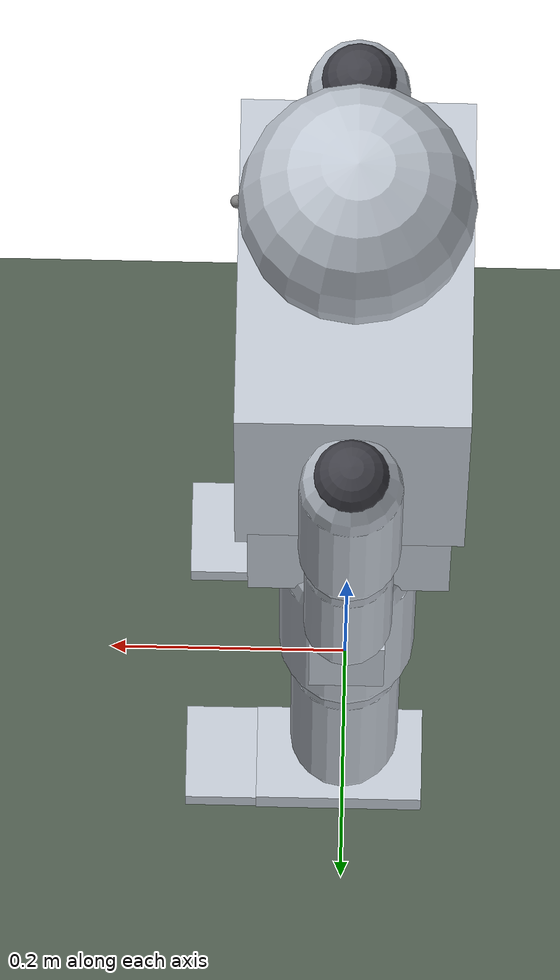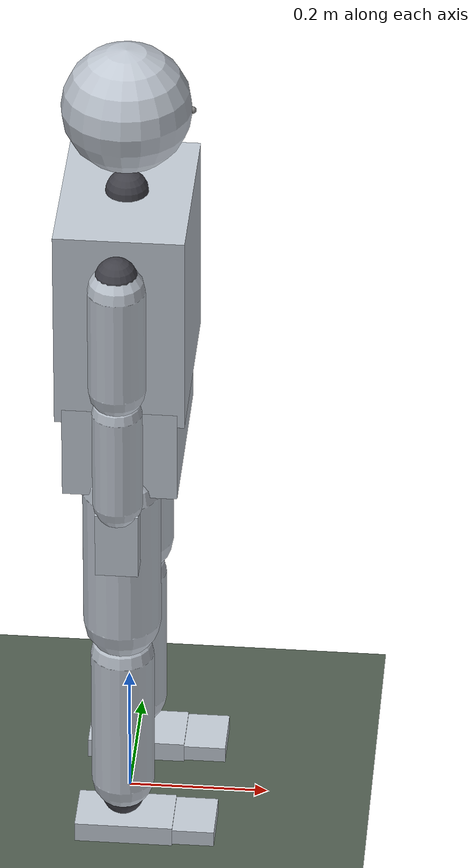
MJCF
<mujoco model="asimov1_full">
  <compiler angle="radian" autolimits="true" />
  <option timestep="0.002" integrator="implicitfast" />
  <default>
    <geom friction="1.0 0.005 0.0001" rgba="0.75 0.78 0.82 1" />
  </default>
  <statistic center="0 0 0.622" extent="1.368" />
  <visual>
    <global azimuth="120" elevation="-15" />
  </visual>
  <worldbody>
    <light pos="0 0 3" dir="0 0 -1" />
    <geom name="floor" type="plane" size="5 5 0.1" rgba="0.3 0.35 0.3 1" />
    <body name="pelvis" pos="0 0 0.62">
      <freejoint name="root" />
      <geom name="pelvis_geom" type="box" pos="0 0 0.05" size="0.08 0.13 0.07" mass="4.0" />
      <site name="pelvis_site" pos="0 0 0" />
      <body name="left_hip" pos="0 0.1 0">
        <joint name="left_hip_pitch_joint" axis="0 1 0" range="-2.09 1" damping="1.0" armature="0.05" limited="true" />
        <geom type="sphere" size="0.03" mass="0.5" contype="0" conaffinity="0" rgba="0.25 0.25 0.28 1" />
        <body name="left_hip2" pos="0 0 0">
          <joint name="left_hip_roll_joint" axis="-1 0 0" range="-0.79 0.79" damping="1.0" armature="0.05" limited="true" />
          <geom type="sphere" size="0.03" mass="0.4" contype="0" conaffinity="0" rgba="0.25 0.25 0.28 1" />
          <body name="left_thigh" pos="0 0 0">
            <joint name="left_hip_yaw_joint" axis="0 0 1" range="-0.79 0.79" damping="1.0" armature="0.01" limited="true" />
            <geom type="capsule" fromto="0 0 -0.03 0 0 -0.25" size="0.055" mass="2.9" />
            <body name="left_shank" pos="0 0 -0.28">
              <joint name="left_knee_joint" axis="0 1 0" range="0 1.5" damping="1.0" armature="0.05" limited="true" />
              <geom type="capsule" fromto="0 0 -0.03 0 0 -0.25" size="0.045" mass="1.8" />
              <body name="left_ankle" pos="0 0 -0.28">
                <joint name="left_ankle_pitch_joint" axis="0 1 0" range="-0.35 0.35" damping="1.0" armature="0.05" limited="true" />
                <geom type="sphere" size="0.03" mass="0.2" contype="0" conaffinity="0" rgba="0.25 0.25 0.28 1" />
                <body name="left_foot" pos="0 0 0">
                  <joint name="left_ankle_roll_joint" axis="-1 0 0" range="-0.1 0.1" damping="1.0" armature="0.01" limited="true" />
                  <geom type="box" pos="0.003333 0 -0.045" size="0.07 0.04 0.015" mass="0.9" />
                  <body name="left_toe" pos="0.07333 0 -0.045">
                    <joint name="left_toe_joint" axis="0 1 0" range="-1.05 0" stiffness="2.67" damping="0.05" limited="true" />
                    <geom type="box" pos="0.03 0 0" size="0.03 0.04 0.012" mass="0.15" />
                  </body>
                </body>
              </body>
            </body>
          </body>
        </body>
      </body>
      <body name="right_hip" pos="0 -0.1 0">
        <joint name="right_hip_pitch_joint" axis="0 -1 0" range="-1 2.09" damping="1.0" armature="0.05" limited="true" />
        <geom type="sphere" size="0.03" mass="0.5" contype="0" conaffinity="0" rgba="0.25 0.25 0.28 1" />
        <body name="right_hip2" pos="0 0 0">
          <joint name="right_hip_roll_joint" axis="-1 0 0" range="-0.79 0.79" damping="1.0" armature="0.05" limited="true" />
          <geom type="sphere" size="0.03" mass="0.4" contype="0" conaffinity="0" rgba="0.25 0.25 0.28 1" />
          <body name="right_thigh" pos="0 0 0">
            <joint name="right_hip_yaw_joint" axis="0 0 1" range="-0.79 0.79" damping="1.0" armature="0.01" limited="true" />
            <geom type="capsule" fromto="0 0 -0.03 0 0 -0.25" size="0.055" mass="2.9" />
            <body name="right_shank" pos="0 0 -0.28">
              <joint name="right_knee_joint" axis="0 -1 0" range="-1.5 0" damping="1.0" armature="0.05" limited="true" />
              <geom type="capsule" fromto="0 0 -0.03 0 0 -0.25" size="0.045" mass="1.8" />
              <body name="right_ankle" pos="0 0 -0.28">
                <joint name="right_ankle_pitch_joint" axis="0 -1 0" range="-0.35 0.35" damping="1.0" armature="0.05" limited="true" />
                <geom type="sphere" size="0.03" mass="0.2" contype="0" conaffinity="0" rgba="0.25 0.25 0.28 1" />
                <body name="right_foot" pos="0 0 0">
                  <joint name="right_ankle_roll_joint" axis="-1 0 0" range="-0.1 0.1" damping="1.0" armature="0.01" limited="true" />
                  <geom type="box" pos="0.003333 0 -0.045" size="0.07 0.04 0.015" mass="0.9" />
                  <body name="right_toe" pos="0.07333 0 -0.045">
                    <joint name="right_toe_joint" axis="0 -1 0" range="0 1.05" stiffness="2.67" damping="0.05" limited="true" />
                    <geom type="box" pos="0.03 0 0" size="0.03 0.04 0.012" mass="0.15" />
                  </body>
                </body>
              </body>
            </body>
          </body>
        </body>
      </body>
      <body name="torso" pos="0 0 0.1">
        <joint name="waist_yaw_joint" axis="0 0 1" range="-1.57 1.57" damping="1.0" armature="0.05" limited="true" />
        <geom name="torso_geom" type="box" pos="0 0 0.15" size="0.09 0.13 0.15" mass="6.2" />
        <geom name="battery_pack" type="box" pos="0 -0.0 0.06" size="0.06 0.09 0.035" mass="2.0" contype="0" conaffinity="0" rgba="0.8 0.6 0.1 1" />
        <site name="imu" pos="0 0 0.15" />
        <body name="neck" pos="0 0 0.3">
          <joint name="neck_yaw_joint" axis="0 0 1" range="-1.57 1.57" damping="1.0" armature="0.01" limited="true" />
          <geom type="sphere" size="0.03" mass="0.15" contype="0" conaffinity="0" rgba="0.25 0.25 0.28 1" />
          <body name="head" pos="0 0 0.08">
            <joint name="neck_pitch_joint" axis="0 1 0" range="-0.79 0.79" damping="1.0" armature="0.01" limited="true" />
            <geom type="sphere" pos="0 0 0.054" size="0.09" mass="1.5" />
            <site name="camera_mount" pos="0.09 0 0.054" />
          </body>
        </body>
        <body name="left_shoulder" pos="0 0.16 0.26">
          <joint name="left_shoulder_pitch_joint" axis="0 1 0" range="-3.14 0.87" damping="1.0" armature="0.05" limited="true" />
          <geom type="sphere" size="0.03" mass="0.4" contype="0" conaffinity="0" rgba="0.25 0.25 0.28 1" />
          <body name="left_shoulder2" pos="0 0 0">
            <joint name="left_shoulder_roll_joint" axis="-1 0 0" range="-1.57 0" damping="1.0" armature="0.05" limited="true" />
            <geom type="sphere" size="0.03" mass="0.3" contype="0" conaffinity="0" rgba="0.25 0.25 0.28 1" />
            <body name="left_upper_arm" pos="0 0 0">
              <joint name="left_shoulder_yaw_joint" axis="0 0 1" range="-1.57 1.57" damping="1.0" armature="0.01" limited="true" />
              <geom type="capsule" fromto="0 0 -0.02 0 0 -0.18" size="0.04" mass="1.6" />
              <body name="left_forearm" pos="0 0 -0.2">
                <joint name="left_elbow_joint" axis="0 1 0" range="0 2.44" damping="1.0" armature="0.01" limited="true" />
                <geom type="capsule" fromto="0 0 -0.02 0 0 -0.17" size="0.035" mass="1.0" />
                <body name="left_hand" pos="0 0 -0.19">
                  <joint name="left_wrist_yaw_joint" axis="0 0 1" range="-3.14 3.14" damping="1.0" armature="0.01" limited="true" />
                  <geom type="box" pos="0 0 -0.04" size="0.03 0.02 0.05" mass="0.4" />
                </body>
              </body>
            </body>
          </body>
        </body>
        <body name="right_shoulder" pos="0 -0.16 0.26">
          <joint name="right_shoulder_pitch_joint" axis="0 -1 0" range="-0.87 3.14" damping="1.0" armature="0.05" limited="true" />
          <geom type="sphere" size="0.03" mass="0.4" contype="0" conaffinity="0" rgba="0.25 0.25 0.28 1" />
          <body name="right_shoulder2" pos="0 0 0">
            <joint name="right_shoulder_roll_joint" axis="-1 0 0" range="0 1.57" damping="1.0" armature="0.05" limited="true" />
            <geom type="sphere" size="0.03" mass="0.3" contype="0" conaffinity="0" rgba="0.25 0.25 0.28 1" />
            <body name="right_upper_arm" pos="0 0 0">
              <joint name="right_shoulder_yaw_joint" axis="0 0 1" range="-1.57 1.57" damping="1.0" armature="0.01" limited="true" />
              <geom type="capsule" fromto="0 0 -0.02 0 0 -0.18" size="0.04" mass="1.6" />
              <body name="right_forearm" pos="0 0 -0.2">
                <joint name="right_elbow_joint" axis="0 -1 0" range="-2.44 0" damping="1.0" armature="0.01" limited="true" />
                <geom type="capsule" fromto="0 0 -0.02 0 0 -0.17" size="0.035" mass="1.0" />
                <body name="right_hand" pos="0 0 -0.19">
                  <joint name="right_wrist_yaw_joint" axis="0 0 1" range="-3.14 3.14" damping="1.0" armature="0.01" limited="true" />
                  <geom type="box" pos="0 0 -0.04" size="0.03 0.02 0.05" mass="0.4" />
                </body>
              </body>
            </body>
          </body>
        </body>
      </body>
    </body>
  </worldbody>
  <contact>
    <exclude body1="pelvis" body2="left_thigh" />
    <exclude body1="pelvis" body2="right_thigh" />
    <exclude body1="torso" body2="left_upper_arm" />
    <exclude body1="torso" body2="right_upper_arm" />
    <exclude body1="left_hand" body2="left_thigh" />
    <exclude body1="left_forearm" body2="left_thigh" />
    <exclude body1="right_hand" body2="right_thigh" />
    <exclude body1="right_forearm" body2="right_thigh" />
  </contact>
  <actuator>
    <motor name="left_hip_pitch" joint="left_hip_pitch_joint" ctrlrange="-120 120" />
    <motor name="left_hip_roll" joint="left_hip_roll_joint" ctrlrange="-90 90" />
    <motor name="left_hip_yaw" joint="left_hip_yaw_joint" ctrlrange="-60 60" />
    <motor name="left_knee" joint="left_knee_joint" ctrlrange="-75 75" />
    <motor name="left_ankle_pitch" joint="left_ankle_pitch_joint" ctrlrange="-145.4 145.4" />
    <motor name="left_ankle_roll" joint="left_ankle_roll_joint" ctrlrange="-57.6 57.6" />
    <motor name="right_hip_pitch" joint="right_hip_pitch_joint" ctrlrange="-120 120" />
    <motor name="right_hip_roll" joint="right_hip_roll_joint" ctrlrange="-90 90" />
    <motor name="right_hip_yaw" joint="right_hip_yaw_joint" ctrlrange="-60 60" />
    <motor name="right_knee" joint="right_knee_joint" ctrlrange="-75 75" />
    <motor name="right_ankle_pitch" joint="right_ankle_pitch_joint" ctrlrange="-145.4 145.4" />
    <motor name="right_ankle_roll" joint="right_ankle_roll_joint" ctrlrange="-57.6 57.6" />
    <motor name="waist_yaw" joint="waist_yaw_joint" ctrlrange="-120 120" />
    <motor name="neck_yaw" joint="neck_yaw_joint" ctrlrange="-36 36" />
    <motor name="neck_pitch" joint="neck_pitch_joint" ctrlrange="-36 36" />
    <motor name="left_shoulder_pitch" joint="left_shoulder_pitch_joint" ctrlrange="-90 90" />
    <motor name="left_shoulder_roll" joint="left_shoulder_roll_joint" ctrlrange="-75 75" />
    <motor name="left_shoulder_yaw" joint="left_shoulder_yaw_joint" ctrlrange="-60 60" />
    <motor name="left_elbow" joint="left_elbow_joint" ctrlrange="-36 36" />
    <motor name="left_wrist_yaw" joint="left_wrist_yaw_joint" ctrlrange="-36 36" />
    <motor name="right_shoulder_pitch" joint="right_shoulder_pitch_joint" ctrlrange="-90 90" />
    <motor name="right_shoulder_roll" joint="right_shoulder_roll_joint" ctrlrange="-75 75" />
    <motor name="right_shoulder_yaw" joint="right_shoulder_yaw_joint" ctrlrange="-60 60" />
    <motor name="right_elbow" joint="right_elbow_joint" ctrlrange="-36 36" />
    <motor name="right_wrist_yaw" joint="right_wrist_yaw_joint" ctrlrange="-36 36" />
  </actuator>
  <sensor>
    <jointpos name="left_hip_pitch_joint_pos" joint="left_hip_pitch_joint" />
    <jointvel name="left_hip_pitch_joint_vel" joint="left_hip_pitch_joint" />
    <jointpos name="left_hip_roll_joint_pos" joint="left_hip_roll_joint" />
    <jointvel name="left_hip_roll_joint_vel" joint="left_hip_roll_joint" />
    <jointpos name="left_hip_yaw_joint_pos" joint="left_hip_yaw_joint" />
    <jointvel name="left_hip_yaw_joint_vel" joint="left_hip_yaw_joint" />
    <jointpos name="left_knee_joint_pos" joint="left_knee_joint" />
    <jointvel name="left_knee_joint_vel" joint="left_knee_joint" />
    <jointpos name="left_ankle_pitch_joint_pos" joint="left_ankle_pitch_joint" />
    <jointvel name="left_ankle_pitch_joint_vel" joint="left_ankle_pitch_joint" />
    <jointpos name="left_ankle_roll_joint_pos" joint="left_ankle_roll_joint" />
    <jointvel name="left_ankle_roll_joint_vel" joint="left_ankle_roll_joint" />
    <jointpos name="right_hip_pitch_joint_pos" joint="right_hip_pitch_joint" />
    <jointvel name="right_hip_pitch_joint_vel" joint="right_hip_pitch_joint" />
    <jointpos name="right_hip_roll_joint_pos" joint="right_hip_roll_joint" />
    <jointvel name="right_hip_roll_joint_vel" joint="right_hip_roll_joint" />
    <jointpos name="right_hip_yaw_joint_pos" joint="right_hip_yaw_joint" />
    <jointvel name="right_hip_yaw_joint_vel" joint="right_hip_yaw_joint" />
    <jointpos name="right_knee_joint_pos" joint="right_knee_joint" />
    <jointvel name="right_knee_joint_vel" joint="right_knee_joint" />
    <jointpos name="right_ankle_pitch_joint_pos" joint="right_ankle_pitch_joint" />
    <jointvel name="right_ankle_pitch_joint_vel" joint="right_ankle_pitch_joint" />
    <jointpos name="right_ankle_roll_joint_pos" joint="right_ankle_roll_joint" />
    <jointvel name="right_ankle_roll_joint_vel" joint="right_ankle_roll_joint" />
    <jointpos name="waist_yaw_joint_pos" joint="waist_yaw_joint" />
    <jointvel name="waist_yaw_joint_vel" joint="waist_yaw_joint" />
    <jointpos name="neck_yaw_joint_pos" joint="neck_yaw_joint" />
    <jointvel name="neck_yaw_joint_vel" joint="neck_yaw_joint" />
    <jointpos name="neck_pitch_joint_pos" joint="neck_pitch_joint" />
    <jointvel name="neck_pitch_joint_vel" joint="neck_pitch_joint" />
    <jointpos name="left_shoulder_pitch_joint_pos" joint="left_shoulder_pitch_joint" />
    <jointvel name="left_shoulder_pitch_joint_vel" joint="left_shoulder_pitch_joint" />
    <jointpos name="left_shoulder_roll_joint_pos" joint="left_shoulder_roll_joint" />
    <jointvel name="left_shoulder_roll_joint_vel" joint="left_shoulder_roll_joint" />
    <jointpos name="left_shoulder_yaw_joint_pos" joint="left_shoulder_yaw_joint" />
    <jointvel name="left_shoulder_yaw_joint_vel" joint="left_shoulder_yaw_joint" />
    <jointpos name="left_elbow_joint_pos" joint="left_elbow_joint" />
    <jointvel name="left_elbow_joint_vel" joint="left_elbow_joint" />
    <jointpos name="left_wrist_yaw_joint_pos" joint="left_wrist_yaw_joint" />
    <jointvel name="left_wrist_yaw_joint_vel" joint="left_wrist_yaw_joint" />
    <jointpos name="right_shoulder_pitch_joint_pos" joint="right_shoulder_pitch_joint" />
    <jointvel name="right_shoulder_pitch_joint_vel" joint="right_shoulder_pitch_joint" />
    <jointpos name="right_shoulder_roll_joint_pos" joint="right_shoulder_roll_joint" />
    <jointvel name="right_shoulder_roll_joint_vel" joint="right_shoulder_roll_joint" />
    <jointpos name="right_shoulder_yaw_joint_pos" joint="right_shoulder_yaw_joint" />
    <jointvel name="right_shoulder_yaw_joint_vel" joint="right_shoulder_yaw_joint" />
    <jointpos name="right_elbow_joint_pos" joint="right_elbow_joint" />
    <jointvel name="right_elbow_joint_vel" joint="right_elbow_joint" />
    <jointpos name="right_wrist_yaw_joint_pos" joint="right_wrist_yaw_joint" />
    <jointvel name="right_wrist_yaw_joint_vel" joint="right_wrist_yaw_joint" />
    <gyro name="imu_gyro" site="imu" />
    <accelerometer name="imu_acc" site="imu" />
  </sensor>
</mujoco>
